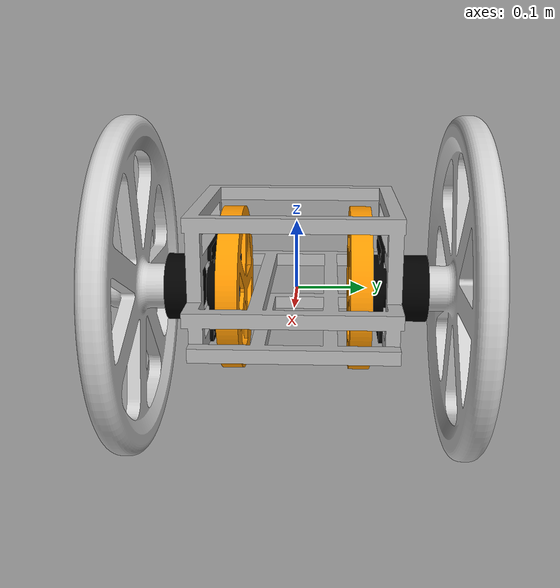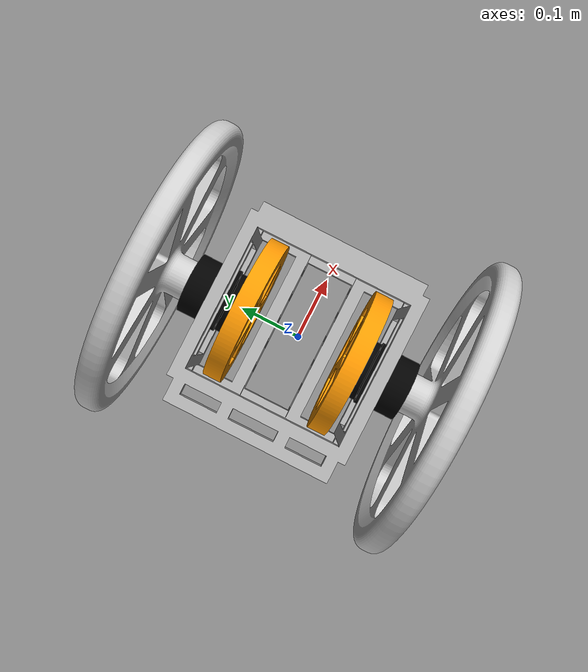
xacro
<?xml version="1.0" encoding="utf-8"?>

<robot xmlns:xacro="http://www.ros.org/wiki/xacro" name="gyrosse_urdf">

    <!-- parameters -->
  <xacro:arg name="name" default="gyrosse" />
  <xacro:arg name="prefix" default="" />
  <xacro:arg name="ifname" default="can0" />

 <!-- Import Rviz colors -->
    <xacro:include filename="$(find gyrosse_description)/urdf/materials.xacro" />

    <!-- Import Gyrosse Macro -->
    <xacro:include filename="$(find gyrosse_description)/urdf/gyrosse.joints_links.xacro" />

    <!-- Import Gyrosse ros2_control description -->
    <xacro:include filename="$(find gyrosse_description)/urdf/gyrosse.ros2_control.xacro"/>

    <link name="base_link"/>
    <!-- Geometry Gyrosse description -->
    <xacro:chassis name="$(arg prefix)chassis"/>

    <xacro:motor_wheel name="$(arg prefix)motor_wheel_right"
                joint_origin_xyz="0 -0.1905 0"
                joint_rpy="0 0 ${pi} "/>

    <xacro:motor_wheel name="$(arg prefix)motor_wheel_left"
                joint_origin_xyz="0 0.1905 0"
                joint_rpy="0 0 0"/>

    <xacro:wheel name="$(arg prefix)right_wheel"
                joint_origin_xyz="0 -0.1905  0"
                joint_rpy="0 0 ${pi}"/>

    <xacro:wheel name="$(arg prefix)left_wheel"
                joint_origin_xyz="0 0.1905 0"
                joint_rpy="0 0 0"/>

    <xacro:motor_flywheel name="$(arg prefix)motor_flywheel_right"
                    joint_origin_xyz="0 -0.0825 0"
                    joint_rpy="0 0 0"/>

    <xacro:motor_flywheel name="$(arg prefix)motor_flywheel_left"
                    joint_origin_xyz="0 0.0825 0 "
                    joint_rpy="0 0 ${pi}"/>

    <xacro:flywheel name="$(arg prefix)flywheel_right"
                joint_origin_xyz="0 -0.0825  0"
                joint_rpy="0 0 0"/>

    <xacro:flywheel name="$(arg prefix)flywheel_left"
                joint_origin_xyz="0 0.0825  0"
                joint_rpy="0 0 ${pi}"/>

    <xacro:ros2_control name="$(arg name)"
                prefix="$(arg prefix)"
                ifname="$(arg ifname)"/>

</robot>

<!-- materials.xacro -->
<robot xmlns:xacro="http://www.ros.org/wiki/xacro" >

<material name="silver">
  <color rgba="0.700 0.700 0.700 1.000"/>
</material>
 <material name="black">
    <color rgba="0 0 0 1" />
  </material>
  <material name="grey">
    <color rgba="0.8 0.8 0.8 1" />
  </material>
  <material name="orange">
    <color rgba="1 0.6 0 1" />
  </material>
  <material name="white">
    <color rgba="1 1 1 1" />
  </material>

</robot>

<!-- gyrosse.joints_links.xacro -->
<robot xmlns:xacro="http://www.ros.org/wiki/xacro">

<!--chassis macro -->
  <xacro:macro name="chassis" params="name">
    <link name="${name}">
    <inertial>
      <origin xyz="0 0 0" rpy="0 0 0"/>
      <mass value="8.4"/>
      <inertia ixx="0.121" iyy="0.1235" izz="0.173" ixy="0" iyz="0" ixz="0.00024"/>
    </inertial>
    <visual>
      <origin xyz="0 0 0" rpy="0 0 0"/>
      <geometry>
        <mesh filename="file://$(find gyrosse_description)/meshes/chassis.stl" scale="0.001 0.001 0.001"/>
      </geometry>
      <material name="silver"/>
    </visual>
    <collision>
      <origin xyz="0 0 0" rpy="0 0 0"/>
      <geometry>
        <mesh filename="file://$(find gyrosse_description)/meshes/chassis.stl" scale="0.001 0.001 0.001"/>
      </geometry>
    </collision>
    </link>
    <joint name="${name}_joint" type="fixed">
      <origin xyz="0 0 0" rpy="0 0 0"/>
      <parent link="base_link"/>
      <child link="${name}"/>
    </joint>
  </xacro:macro>

<!--motor wheel macro -->
  <xacro:macro name="motor_wheel" params="name joint_origin_xyz joint_rpy">
    <link name="${name}">
      <inertial>
        <origin xyz="0 -0.017 0"  rpy="0 0 0"/>
        <mass value="1.25"/>
        <inertia ixx="0.00161" iyy="0.00215" izz="0.00105" ixy="0" iyz="0" ixz="0"/>
      </inertial>
      <visual>
        <origin xyz="0 0 0"  rpy="0 0 0"/>
        <geometry>
          <mesh filename="file://$(find gyrosse_description)/meshes/motor_wheel.stl" scale="0.001 0.001 0.001"/>
        </geometry>
        <material name="black"/>
      </visual>
      <collision>
        <origin xyz="0 0 0"  rpy="0 0 0"/>
        <geometry>
          <mesh filename="file://$(find gyrosse_description)/meshes/motor_wheel.stl" scale="0.001 0.001 0.001"/>
        </geometry>
      </collision>
    </link>
    <joint name="${name}_joint" type="fixed">
      <origin xyz="${joint_origin_xyz}" rpy="${joint_rpy}"/>
      <parent link="base_link"/>
      <child link="${name}"/>
    </joint>
  </xacro:macro>

<!--motor flywheel macro -->
  <xacro:macro name="motor_flywheel" params="name joint_origin_xyz joint_rpy">
    <link name="${name}">
      <inertial>
        <origin xyz="0 -0.016 0"  rpy="0 0 0"/>
        <mass value="1.2"/>
        <inertia ixx="0.001528" iyy="0.002077" izz="0.000977" ixy="0" iyz="0" ixz="0"/>
      </inertial>
      <visual>
        <origin xyz="0 0 0"  rpy="0 0 0"/>
        <geometry>
          <mesh filename="file://$(find gyrosse_description)/meshes/motor_flywheel.stl" scale="0.001 0.001 0.001"/>
        </geometry>
        <material name="black"/>
      </visual>
      <collision>
        <origin xyz="0 0 0"  rpy="0 0 0"/>
        <geometry>
          <mesh filename="file://$(find gyrosse_description)/meshes/motor_flywheel.stl" scale="0.001 0.001 0.001"/>
        </geometry>
      </collision>
    </link>
    <joint name="${name}_joint" type="fixed">
      <origin xyz="${joint_origin_xyz}" rpy="${joint_rpy}"/>
      <parent link="base_link"/>
      <child link="${name}"/>
    </joint>
  </xacro:macro>

<!-- wheel macro -->
  <xacro:macro name="wheel" params="name joint_origin_xyz joint_rpy">
    <link name="${name}">
      <inertial>
        <origin xyz="0 0.05 0" rpy="0 0 0"/>
        <mass value="1.2"/>
        <inertia ixx="0.021235" iyy="0.041938" izz="0.021235" ixy="0" iyz="0" ixz="0"/>
      </inertial>
      <visual>
        <origin xyz="0 0 0" rpy="0 0 0"/>
        <geometry>
          <mesh filename="file://$(find gyrosse_description)/meshes/wheel.stl" scale="0.001 0.001 0.001"/>
        </geometry>
        <material name="grey"/>
      </visual>
      <collision>
        <origin xyz="0 0 0" rpy="0 0 0"/>
        <geometry>
          <mesh filename="file://$(find gyrosse_description)/meshes/wheel.stl" scale="0.001 0.001 0.001"/>
        </geometry>
      </collision>
    </link>
    <joint name="${name}_joint" type="continuous">
      <origin xyz="${joint_origin_xyz}" rpy="${joint_rpy}"/>
      <parent link="base_link"/>
      <child link="${name}"/>
      <axis xyz="0 1 0"/>
    </joint>
  </xacro:macro>

<!-- flywheel macro -->
  <xacro:macro name="flywheel" params="name joint_origin_xyz joint_rpy">
    <link name="${name}">
      <inertial>
        <origin xyz="0 -0.008 0" rpy="0 0 0"/>
        <mass value="1.8"/>
        <inertia ixx="0.009354" iyy="0.018431" izz="0.009354" ixy="0" iyz="0" ixz="0"/>
      </inertial>
      <visual>
        <origin xyz="0 0 0" rpy="0 0 0"/>
        <geometry>
          <mesh filename="file://$(find gyrosse_description)/meshes/flywheel.stl" scale="0.001 0.001 0.001"/>
        </geometry>
        <material name="orange"/>
      </visual>
      <collision>
        <origin xyz="0 0 0" rpy="0 0 0"/>
        <geometry>
          <mesh filename="file://$(find gyrosse_description)/meshes/flywheel.stl" scale="0.001 0.001 0.001"/>
        </geometry>
      </collision>
    </link>
    <joint name="${name}_joint" type="continuous">
      <origin xyz="${joint_origin_xyz}" rpy="${joint_rpy}"/>
      <parent link="base_link"/>
      <child link="${name}"/>
      <axis xyz="0 1 0"/>
    </joint>
  </xacro:macro>
</robot>
